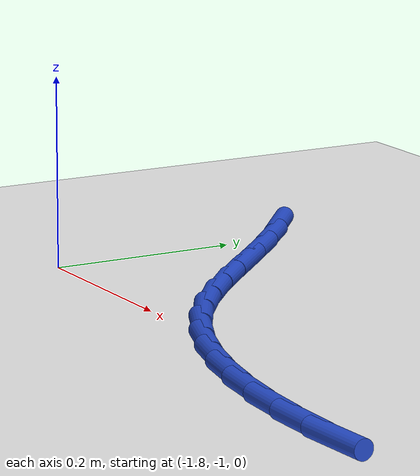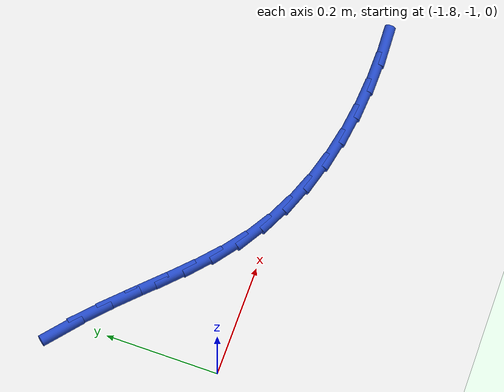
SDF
<sdf version="1.6">
 <world name="default">
  <model name="ground_plane">
   <static>1</static>
   <link name="link">
    <collision name="collision">
     <geometry><plane><normal>0 0 1</normal><size>100 100</size></plane></geometry>
     <surface><friction><ode><mu>100</mu><mu2>50</mu2></ode></friction></surface>
    </collision>
    <visual name="visual">
     <cast_shadows>0</cast_shadows>
     <geometry><plane><normal>0 0 1</normal><size>100 100</size></plane></geometry>
     <material>
      <script><uri>file://media/materials/scripts/gazebo.material</uri><name>Gazebo/WhiteGlow</name></script>
     </material>
    </visual>
   </link>
  </model>
  <model name="line">
   <link name="link_83">
    <pose>-1.8182006648299747 -0.7254046360793102 0.01 0 1.57 -0.6934839484937013</pose>
    <collision name="collision">
     <geometry><cylinder><radius>0.01</radius><length>0.08</length></cylinder></geometry>
    </collision>
    <visual name="visual">
     <material>
      <script><name>Gazebo/Blue</name><uri>file://media/materials/scripts/gazebo.material</uri></script>
     </material>
     <geometry><cylinder><radius>0.01</radius><length>0.08</length></cylinder></geometry>
    </visual>
   </link>
   <link name="link_84">
    <pose>-1.7755399644717502 -0.7608646437737064 0.01 0 1.57 -0.7496571121994006</pose>
    <collision name="collision">
     <geometry><cylinder><radius>0.01</radius><length>0.08</length></cylinder></geometry>
    </collision>
    <visual name="visual">
     <material>
      <script><name>Gazebo/Blue</name><uri>file://media/materials/scripts/gazebo.material</uri></script>
     </material>
     <geometry><cylinder><radius>0.01</radius><length>0.08</length></cylinder></geometry>
    </visual>
   </link>
   <link name="link_85">
    <pose>-1.7355881705119027 -0.7980580138193021 0.01 0 1.57 -0.7812413549872654</pose>
    <collision name="collision">
     <geometry><cylinder><radius>0.01</radius><length>0.08</length></cylinder></geometry>
    </collision>
    <visual name="visual">
     <material>
      <script><name>Gazebo/Blue</name><uri>file://media/materials/scripts/gazebo.material</uri></script>
     </material>
     <geometry><cylinder><radius>0.01</radius><length>0.08</length></cylinder></geometry>
    </visual>
   </link>
   <link name="link_86">
    <pose>-1.6973641242964417 -0.8359655936286732 0.01 0 1.57 -0.7870613318602342</pose>
    <collision name="collision">
     <geometry><cylinder><radius>0.01</radius><length>0.08</length></cylinder></geometry>
    </collision>
    <visual name="visual">
     <material>
      <script><name>Gazebo/Blue</name><uri>file://media/materials/scripts/gazebo.material</uri></script>
     </material>
     <geometry><cylinder><radius>0.01</radius><length>0.08</length></cylinder></geometry>
    </visual>
   </link>
   <link name="link_87">
    <pose>-1.6598864892202918 -0.873568099742969 0.01 0 1.57 -0.7660142173226201</pose>
    <collision name="collision">
     <geometry><cylinder><radius>0.01</radius><length>0.08</length></cylinder></geometry>
    </collision>
    <visual name="visual">
     <material>
      <script><name>Gazebo/Blue</name><uri>file://media/materials/scripts/gazebo.material</uri></script>
     </material>
     <geometry><cylinder><radius>0.01</radius><length>0.08</length></cylinder></geometry>
    </visual>
   </link>
   <link name="link_88">
    <pose>-1.622173928678379 -0.9098462487033414 0.01 0 1.57 -0.7169616164351756</pose>
    <collision name="collision">
     <geometry><cylinder><radius>0.01</radius><length>0.08</length></cylinder></geometry>
    </collision>
    <visual name="visual">
     <material>
      <script><name>Gazebo/Blue</name><uri>file://media/materials/scripts/gazebo.material</uri></script>
     </material>
     <geometry><cylinder><radius>0.01</radius><length>0.08</length></cylinder></geometry>
    </visual>
   </link>
   <link name="link_89">
    <pose>-1.5832451060656259 -0.9437807570509408 0.01 0 1.57 -0.6392355625233079</pose>
    <collision name="collision">
     <geometry><cylinder><radius>0.01</radius><length>0.08</length></cylinder></geometry>
    </collision>
    <visual name="visual">
     <material>
      <script><name>Gazebo/Blue</name><uri>file://media/materials/scripts/gazebo.material</uri></script>
     </material>
     <geometry><cylinder><radius>0.01</radius><length>0.08</length></cylinder></geometry>
    </visual>
   </link>
   <link name="link_90">
    <pose>-1.5421186847769577 -0.9743523413269181 0.01 0 1.57 -0.5393527882795728</pose>
    <collision name="collision">
     <geometry><cylinder><radius>0.01</radius><length>0.08</length></cylinder></geometry>
    </collision>
    <visual name="visual">
     <material>
      <script><name>Gazebo/Blue</name><uri>file://media/materials/scripts/gazebo.material</uri></script>
     </material>
     <geometry><cylinder><radius>0.01</radius><length>0.08</length></cylinder></geometry>
    </visual>
   </link>
   <link name="link_91">
    <pose>-1.4980368551510572 -1.0007375292241811 0.01 0 1.57 -0.4415794769960087</pose>
    <collision name="collision">
     <geometry><cylinder><radius>0.01</radius><length>0.08</length></cylinder></geometry>
    </collision>
    <visual name="visual">
     <material>
      <script><name>Gazebo/Blue</name><uri>file://media/materials/scripts/gazebo.material</uri></script>
     </material>
     <geometry><cylinder><radius>0.01</radius><length>0.08</length></cylinder></geometry>
    </visual>
   </link>
   <link name="link_92">
    <pose>-1.4511448498463517 -1.0229039197657406 0.01 0 1.57 -0.35193899974782905</pose>
    <collision name="collision">
     <geometry><cylinder><radius>0.01</radius><length>0.08</length></cylinder></geometry>
    </collision>
    <visual name="visual">
     <material>
      <script><name>Gazebo/Blue</name><uri>file://media/materials/scripts/gazebo.material</uri></script>
     </material>
     <geometry><cylinder><radius>0.01</radius><length>0.08</length></cylinder></geometry>
    </visual>
   </link>
   <link name="link_93">
    <pose>-1.4018159180121073 -1.04101885600072 0.01 0 1.57 -0.2701355885243872</pose>
    <collision name="collision">
     <geometry><cylinder><radius>0.01</radius><length>0.08</length></cylinder></geometry>
    </collision>
    <visual name="visual">
     <material>
      <script><name>Gazebo/Blue</name><uri>file://media/materials/scripts/gazebo.material</uri></script>
     </material>
     <geometry><cylinder><radius>0.01</radius><length>0.08</length></cylinder></geometry>
    </visual>
   </link>
   <link name="link_94">
    <pose>-1.3504233088058086 -1.0552496809854435 0.01 0 1.57 -0.1955372831791676</pose>
    <collision name="collision">
     <geometry><cylinder><radius>0.01</radius><length>0.08</length></cylinder></geometry>
    </collision>
    <visual name="visual">
     <material>
      <script><name>Gazebo/Blue</name><uri>file://media/materials/scripts/gazebo.material</uri></script>
     </material>
     <geometry><cylinder><radius>0.01</radius><length>0.08</length></cylinder></geometry>
    </visual>
   </link>
   <link name="link_95">
    <pose>-1.2973402713849431 -1.0657637377762346 0.01 0 1.57 -0.12733313346265818</pose>
    <collision name="collision">
     <geometry><cylinder><radius>0.01</radius><length>0.08</length></cylinder></geometry>
    </collision>
    <visual name="visual">
     <material>
      <script><name>Gazebo/Blue</name><uri>file://media/materials/scripts/gazebo.material</uri></script>
     </material>
     <geometry><cylinder><radius>0.01</radius><length>0.08</length></cylinder></geometry>
    </visual>
   </link>
   <link name="link_96">
    <pose>-1.2429400549069967 -1.0727283694294176 0.01 0 1.57 -0.06464203371948567</pose>
    <collision name="collision">
     <geometry><cylinder><radius>0.01</radius><length>0.08</length></cylinder></geometry>
    </collision>
    <visual name="visual">
     <material>
      <script><name>Gazebo/Blue</name><uri>file://media/materials/scripts/gazebo.material</uri></script>
     </material>
     <geometry><cylinder><radius>0.01</radius><length>0.08</length></cylinder></geometry>
    </visual>
   </link>
   <link name="link_97">
    <pose>-1.1875959085294547 -1.076310919001316 0.01 0 1.57 -0.006577955452554912</pose>
    <collision name="collision">
     <geometry><cylinder><radius>0.01</radius><length>0.08</length></cylinder></geometry>
    </collision>
    <visual name="visual">
     <material>
      <script><name>Gazebo/Blue</name><uri>file://media/materials/scripts/gazebo.material</uri></script>
     </material>
     <geometry><cylinder><radius>0.01</radius><length>0.08</length></cylinder></geometry>
    </visual>
   </link>
   <link name="link_98">
    <pose>-1.1316810814098042 -1.0766787295482543 0.01 0 1.57 0.04771776048754142</pose>
    <collision name="collision">
     <geometry><cylinder><radius>0.01</radius><length>0.08</length></cylinder></geometry>
    </collision>
    <visual name="visual">
     <material>
      <script><name>Gazebo/Blue</name><uri>file://media/materials/scripts/gazebo.material</uri></script>
     </material>
     <geometry><cylinder><radius>0.01</radius><length>0.08</length></cylinder></geometry>
    </visual>
   </link>
  </model>
 </world>
</sdf>
